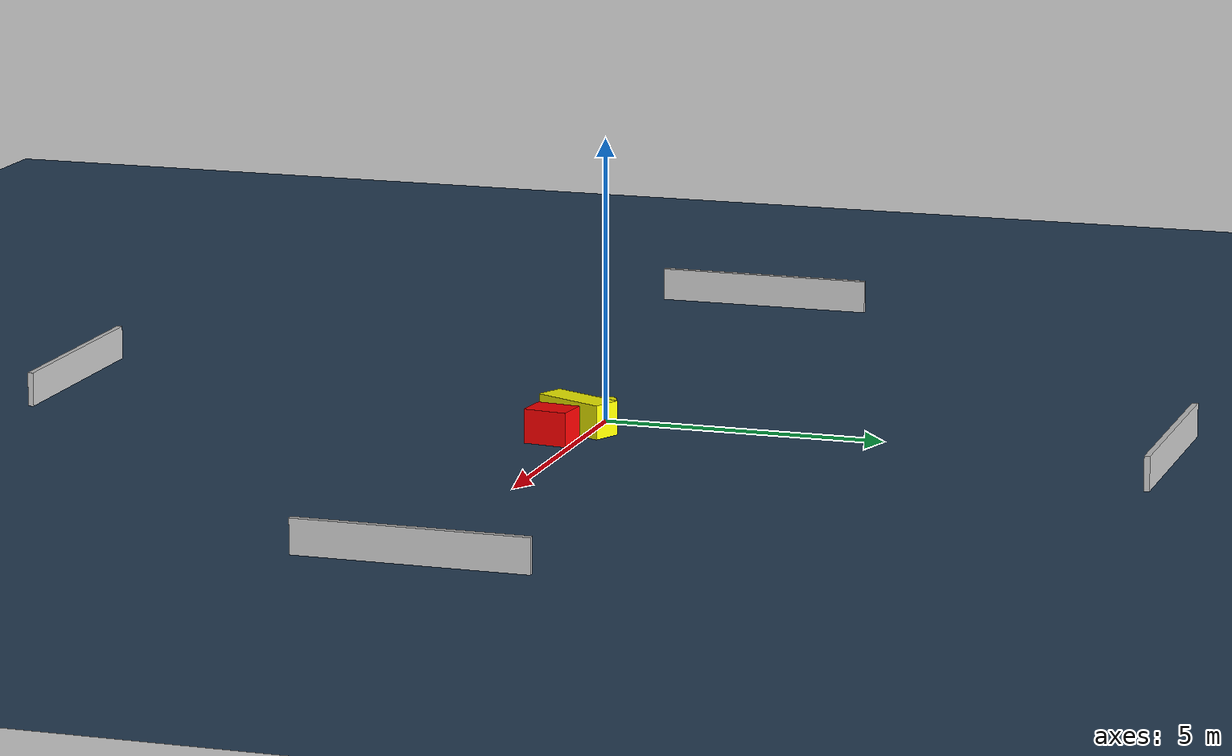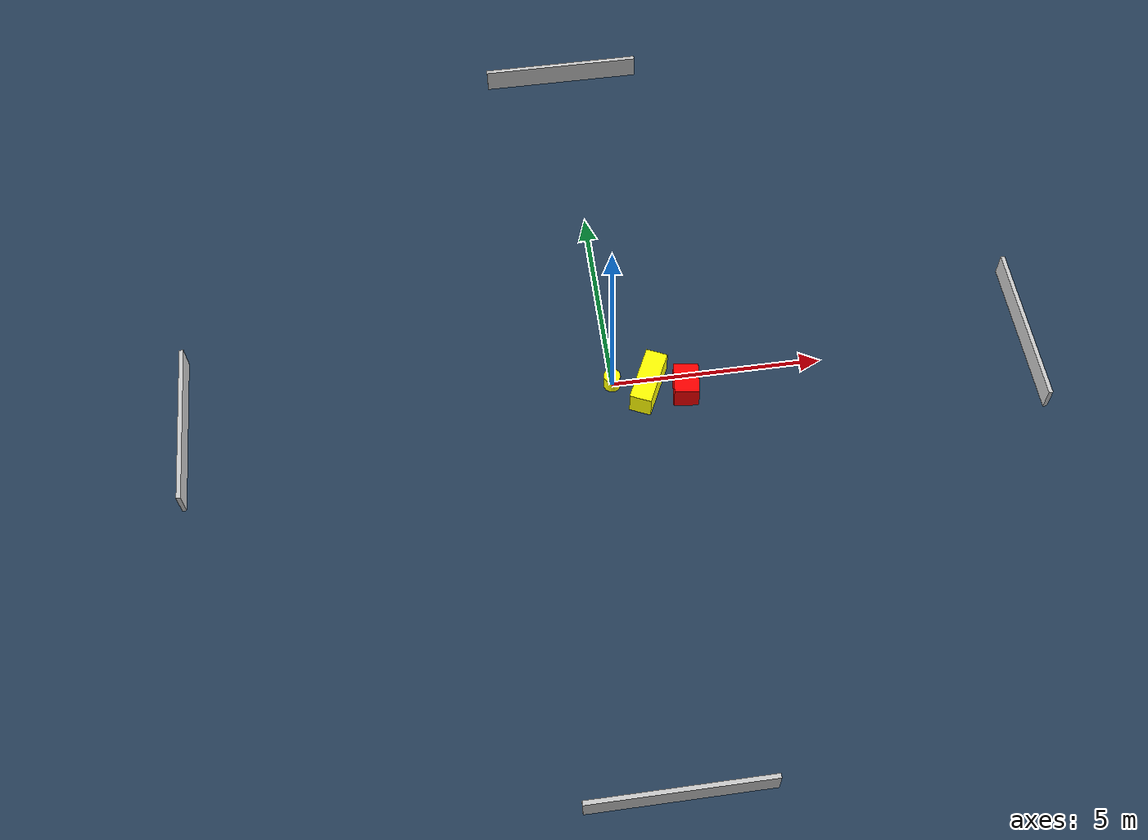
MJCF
<?xml version="1.0" ?>
<mujoco model="generated_environment">
  <option timestep="0.01" integrator="RK4" cone="elliptic"/>
  <default>
    <geom density="1"/>
  </default>
  <asset>
    <texture builtin="gradient" height="3072" name="skybox" rgb1="0.3 0.5 0.7" rgb2="0 0 0" type="skybox" width="512"/>
    <texture builtin="checker" height="300" name="groundplane" rgb1="0.2 0.3 0.4" rgb2="0.1 0.2 0.3" type="2d" width="300"/>
    <material name="groundplane" reflectance="0.2" texrepeat="5 5" texture="groundplane"/>
  </asset>
  <worldbody>
    <light dir="0 0 -1" directional="true" pos="0 0 1.5"/>
    <geom condim="3" friction="0.5 0.005 0.001" material="groundplane" name="floor" pos="0 0 0" size="0 0 0.05" type="plane"/>
    <body name="walls">
      <geom name="wall_1" condim="4" pos="-10.0 0.0 0.3" rgba="0.800000011920929 0.800000011920929 0.800000011920929 1.0" size="0.05 2.0 0.3" type="box"/>
      <geom name="wall_2" condim="4" pos="10.0 0.0 0.3" rgba="0.800000011920929 0.800000011920929 0.800000011920929 1.0" size="0.05 2.0 0.3" type="box"/>
      <geom name="wall_3" condim="4" pos="0.0 -10.0 0.3" rgba="0.800000011920929 0.800000011920929 0.800000011920929 1.0" size="2.0 0.05 0.3" type="box"/>
      <geom name="wall_4" condim="4" pos="0.0 10.0 0.3" rgba="0.800000011920929 0.800000011920929 0.800000011920929 1.0" size="2.0 0.05 0.3" type="box"/>
    </body>
    <body name="robot">
      <joint name="joint_x" type="slide" pos="0 0 0" axis="1 0 0"/>
      <joint name="joint_y" type="slide" pos="0 0 0" axis="0 1 0"/>
      <geom name="robot" type="cylinder" pos="0.0 0.0 0.2" size="0.2 0.2 0.0" mass="5.0" friction="1.0 0.005 0.0001" condim="4" rgba="1.0 1.0 0.0 1.0"/>
    </body>
    <body name="obstacle_1_movable">
      <geom name="obstacle_1_movable" condim="4" pos="0.8332881052476891 -0.23118291765175827 0.3" euler="0 0 154.80001699548433" friction="0.0 0.005 0.001" rgba="1.0 1.0 0.0 1.0" size="0.25920153611857016 0.6819928213640394 0.3" type="box" mass="0.1"/>
      <joint type="free"/>
    </body>
    <body name="obstacle_2_static">
      <geom name="obstacle_2_static" condim="4" pos="1.695113977094265 -0.41960317123052865 0.3" euler="0 0 173.15287243179387" friction="0.0 0.005 0.001" rgba="1.0 0.0 0.0 1.0" size="0.2925287041634765 0.38906694576781753 0.3" type="box"/>
    </body>
  </worldbody>
  <actuator>
    <motor name="actuator_x" joint="joint_x" gear="1" ctrlrange="-1 1"/>
    <motor name="actuator_y" joint="joint_y" gear="1" ctrlrange="-1 1"/>
  </actuator>
</mujoco>
